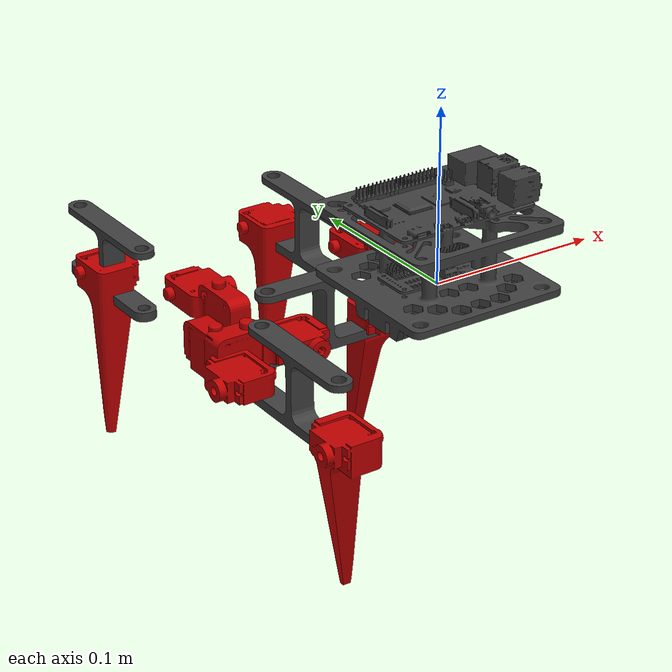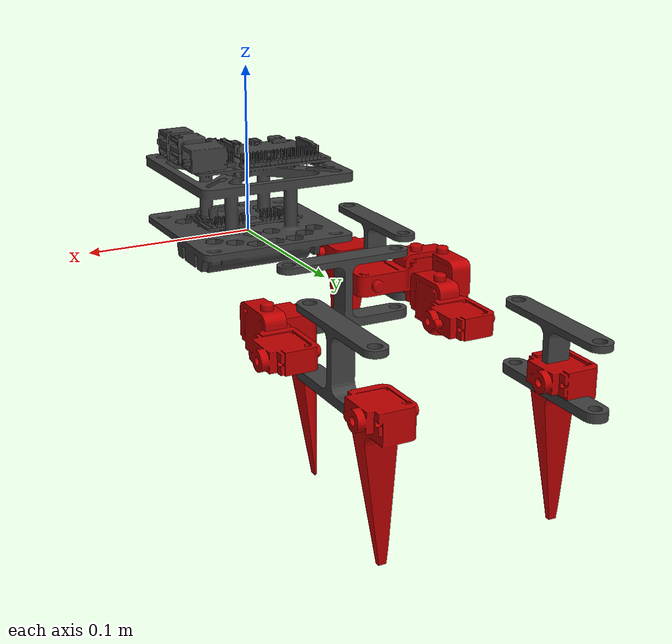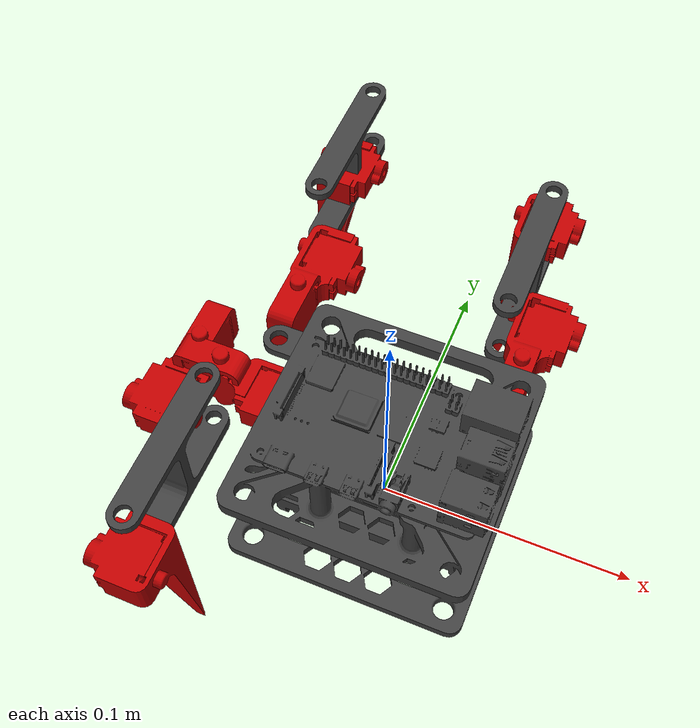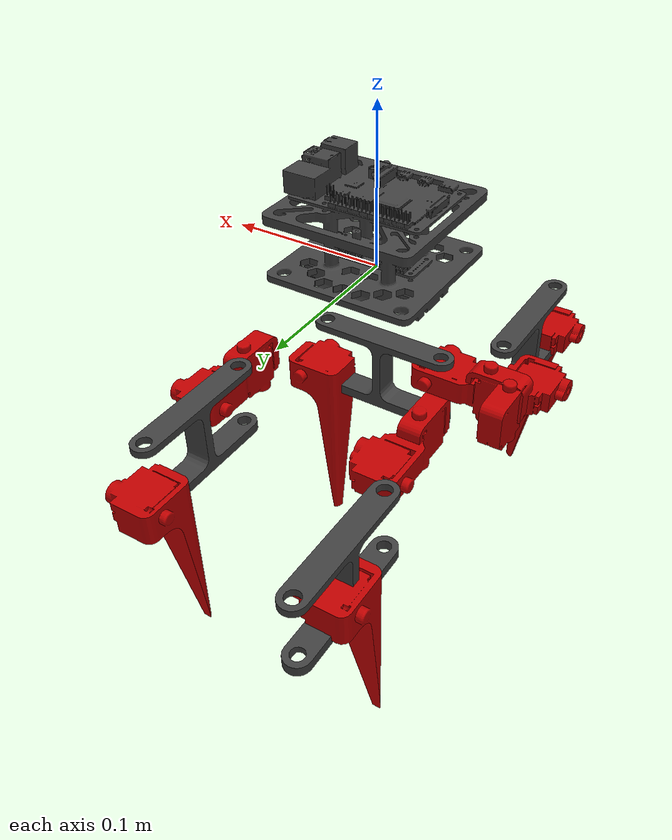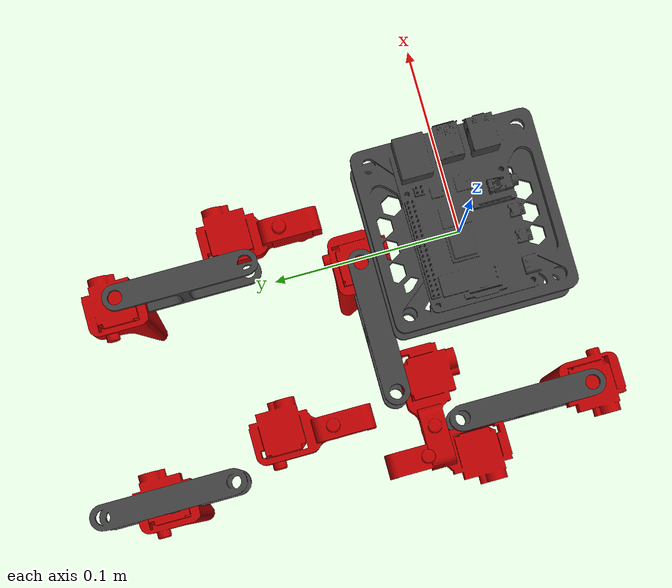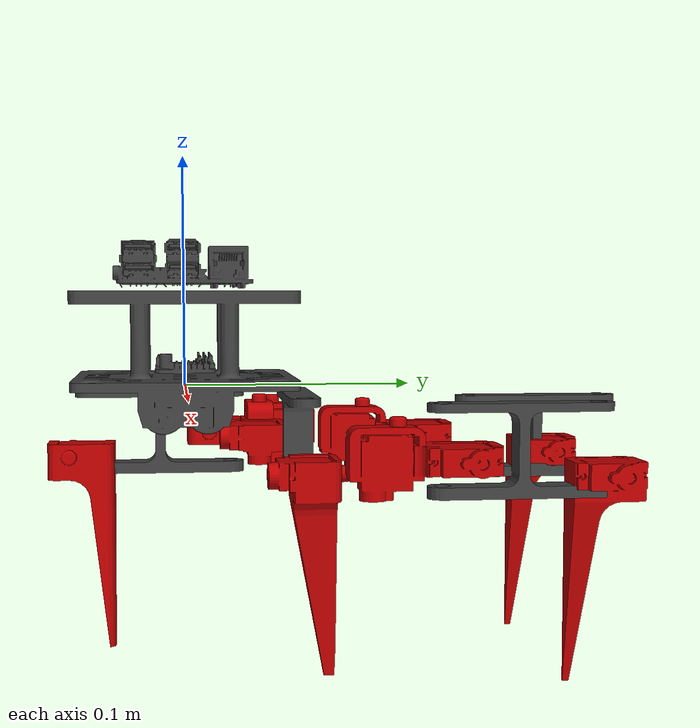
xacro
<?xml version="1.0" encoding="utf-8"?>
<robot xmlns:xacro="http://www.ros.org/wiki/xacro" name="spiderbytes_v9">
<xacro:arg name="ros2_control_yaml" default=""/>

<link name="base_center"/>

<joint name="base_center_to_base_link" type="fixed">
  <parent link="base_center"/>
  <child link="base_link"/>
  <!-- base_link is currently offset from the desired center,
       so we shift it back by (-x_center, -y_center, -z_center) -->
  <origin xyz="-0.03919674 0.0686135 -0.031017" rpy="0 0 0"/>
</joint>

  <link
    name="base_link">
 <collision>
    <origin xyz="0 0 0" rpy="1.5708 0 0" />
    <geometry>
      <box size="0.095 0.067221 0.095"/>
    </geometry>
  </collision>
  <inertial>
    <origin xyz="0 0 0" rpy="1.5708 0 0" />
    <mass value="5.0"/>
    <inertia
      ixx="0.0221"
      iyy="0.0193"
      izz="0.0221"
      ixy="0"
      ixz="0"
      iyz="0"/>
  </inertial>
    <visual>
      <origin
        xyz="0 0 0"
        rpy="0 0 0" />
      <geometry>
        <mesh
          filename="../meshes/v4_base_link.STL" />
      </geometry>
      <material
        name="">
        <color
          rgba="0.250980392156863 0.250980392156863 0.250980392156863 1" />
      </material>
    </visual>
  </link>
  <link
    name="hip_fr">
  <collision>
    <geometry>
      <cylinder radius="0.018" length="0.066"/>
    </geometry>
  </collision>
  <inertial>
    <origin xyz="0 0 0"/>
    <mass value="0.2"/>
    <inertia
      ixx="0.000073"
      iyy="0.000072"
      izz="0.000072"
      ixy="0"
      ixz="0"
      iyz="0"/>
  </inertial>
    <visual>
      <origin
        xyz="0 0 0"
        rpy="0 0 0" />
      <geometry>
        <mesh
          filename="../meshes/v4_link_rotation_1.STL" />
      </geometry>
      <material
        name="">
        <color
          rgba="0.75294 0 0 1" />
      </material>
    </visual>

  </link>
 <joint name="hip_joint_fr" type="revolute">
    <parent link="base_link"/>
    <child link="hip_fr"/>
    <origin
        xyz="-0.022064 -0.014984 0.0014444"
        rpy="0 0 0" />
    <axis xyz="0 0 1"/>
    <limit lower="-1.5708" upper="1.5708" effort="100" velocity="100"/>
  </joint>
  <link
    name="thigh_fr">
  <collision>
   <origin xyz="0.025 0 0" rpy="0 1.5708 0"/>
    <geometry>
      <cylinder radius="0.018" length="0.066"/>
    </geometry>
  </collision>
  <inertial>
    <origin xyz="0 0 0"/>
    <mass value="0.2"/>
    <inertia
      ixx="0.000073"
      iyy="0.000072"
      izz="0.000072"
      ixy="0"
      ixz="0"
      iyz="0"/>
  </inertial>
    <visual>
      <origin
        xyz="0 0 0"
        rpy="0 0 0" />
      <geometry>
        <mesh
          filename="../meshes/v4_link_limb_1.STL" />
      </geometry>
      <material
        name="">
        <color
          rgba="0.25098 0.25098 0.25098 1" />
      </material>
    </visual>

  </link>
   <joint name="knee_joint_fr" type="revolute">
    <parent link="hip_fr"/>
    <child link="thigh_fr"/>
    <origin xyz="0.025 0 0"/>
    <axis xyz="0 1 0"/>
    <limit lower="-1.5708" upper="1.5708" effort="100" velocity="100"/>
  </joint>
  <link
    name="leg_fr">
   <collision>
 <origin xyz="0.045 0 -0.035"/>
    <geometry>
      <cylinder radius="0.018" length="0.102"/>
    </geometry>
  </collision>
  <inertial>
    <origin xyz="0 0 0" rpy="0 1.5708 0"/>
    <mass value="0.25"/>
    <inertia
      ixx="0.000045"
      iyy="0.00214525"
      izz="0.00214525"
      ixy="0"
      ixz="0"
      iyz="0"/>
  </inertial>
    <visual>
      <origin
        xyz="0 0 0"
        rpy="0 0 0" />
      <geometry>
        <mesh
          filename="../meshes/v4_link_leg_1.STL" />
      </geometry>
      <material
        name="">
        <color
          rgba="0.752941176470588 0 0 1" />
      </material>
    </visual>

  </link>
    <joint name="leg_joint_fr" type="revolute">
    <parent link="thigh_fr"/>
    <child link="leg_fr"/>
    <origin xyz="0.045 0 -0.01"/>
    <axis xyz="0 1 0"/>
    <limit lower="-1.5708" upper="1.5708" effort="100" velocity="100"/>
  </joint>
  <link
    name="hip_fl">
     <collision>
    <geometry>
      <cylinder radius="0.018" length="0.066"/>
    </geometry>
  </collision>
  <inertial>
    <origin xyz="0 0 0"/>
    <mass value="0.2"/>
    <inertia
      ixx="0.000073"
      iyy="0.000072"
      izz="0.000072"
      ixy="0"
      ixz="0"
      iyz="0"/>
  </inertial>
    <visual>
      <origin
        xyz="0 0 0"
        rpy="0 0 0" />
      <geometry>
        <mesh
          filename="../meshes/v4_link_rotation_2.STL" />
      </geometry>
      <material
        name="">
        <color
          rgba="0.752941176470588 0 0 1" />
      </material>
    </visual>

  </link>
   <joint name="hip_joint_fl" type="revolute">
    <parent link="base_link"/>
    <child link="hip_fl"/>
    <origin xyz="0.055 0.055 0" rpy="0 0 1.5708"/>
    <axis xyz="0 0 1"/>
    <limit lower="-1.57" upper="1.57" effort="100" velocity="100"/>
  </joint>
  <link
    name="thigh_fl">
   <collision>
      <origin xyz="0.025 0 0" rpy="0 1.5708 0"/>
    <geometry>
      <cylinder radius="0.018" length="0.066"/>
    </geometry>
  </collision>
  <inertial>
    <origin xyz="0 0 0" rpy="0 1.5708 0"/>
    <mass value="0.2"/>
    <inertia
      ixx="0.000073"
      iyy="0.000072"
      izz="0.000072"
      ixy="0"
      ixz="0"
      iyz="0"/>
  </inertial>
    <visual>
      <origin
        xyz="0 0 0"
        rpy="0 0 0" />
      <geometry>
        <mesh
          filename="../meshes/v4_link_limb_2.STL" />
      </geometry>
      <material
        name="">
        <color
          rgba="0.250980392156863 0.250980392156863 0.250980392156863 1" />
      </material>
    </visual>

  </link>
    <joint name="knee_joint_fl" type="revolute">
    <parent link="hip_fl"/>
    <child link="thigh_fl"/>
    <origin xyz="0.025 0 0"/>
    <axis xyz="0 1 0"/>
    <limit lower="-1.5708" upper="1.5708" effort="100" velocity="100"/>
  </joint>
  <link
    name="leg_fl">
   <collision>
  <origin xyz="0.045 0 -0.035"/>
    <geometry>
      <cylinder radius="0.018" length="0.102"/>
    </geometry>
  </collision>
  <inertial>
    <origin xyz="0 0 0" rpy="0 1.5708 0"/>
    <mass value="0.25"/>
    <inertia
      ixx="0.000045"
      iyy="0.00214525"
      izz="0.00214525"
      ixy="0"
      ixz="0"
      iyz="0"/>
  </inertial>
    <visual>
      <origin
        xyz="0 0 0"
        rpy="0 0 0" />
      <geometry>
        <mesh
          filename="../meshes/v4_link_leg_2.STL" />
      </geometry>
      <material
        name="">
        <color
          rgba="0.752941176470588 0 0 1" />
      </material>
    </visual>

  </link>
 <joint name="leg_joint_fl" type="revolute">
    <parent link="thigh_fl"/>
    <child link="leg_fl"/>
    <origin xyz="0.045 0 -0.01"/>
    <axis xyz="0 1 0"/>
    <limit lower="-1.5708" upper="1.5708" effort="100" velocity="100"/>
  </joint>
  <link
    name="hip_rl">
    <collision>
    <geometry>
      <cylinder radius="0.018" length="0.066"/>
    </geometry>
  </collision>
  <inertial>
    <origin xyz="0 0 0"/>
    <mass value="0.2"/>
    <inertia
      ixx="0.000073"
      iyy="0.000072"
      izz="0.000072"
      ixy="0"
      ixz="0"
      iyz="0"/>
  </inertial>
    <visual>
      <origin
        xyz="0 0 0"
        rpy="0 0 0" />
      <geometry>
        <mesh
          filename="../meshes/v4_link_rotation_3.STL" />
      </geometry>
      <material
        name="">
        <color
          rgba="0.752941176470588 0 0 1" />
      </material>
    </visual>

  </link>
   <joint name="hip_joint_rl" type="revolute">
    <parent link="base_link"/>
    <child link="hip_rl"/>
    <origin xyz="-0.055 0.055 0" rpy="0 0 1.5708"/>
    <axis xyz="0 0 1"/>
    <limit lower="-1.5708" upper="1.5708" effort="100" velocity="100"/>
  </joint>
  <link
    name="thigh_rl">
   <collision>
   <origin xyz="0.025 0 0" rpy="0 1.5708 0"/>
    <geometry>
      <cylinder radius="0.018" length="0.066"/>
    </geometry>
  </collision>
  <inertial>
    <origin xyz="0 0 0" rpy="0 1.5708 0"/>
    <mass value="0.2"/>
    <inertia
      ixx="0.000073"
      iyy="0.000072"
      izz="0.000072"
      ixy="0"
      ixz="0"
      iyz="0"/>
  </inertial>
    <visual>
      <origin
        xyz="0 0 0"
        rpy="0 0 0" />
      <geometry>
        <mesh
          filename="../meshes/v4_link_limb_3.STL" />
      </geometry>
      <material
        name="">
        <color
          rgba="0.250980392156863 0.250980392156863 0.250980392156863 1" />
      </material>
    </visual>

  </link>
 <joint name="knee_joint_rl" type="revolute">
    <parent link="hip_rl"/>
    <child link="thigh_rl"/>
    <origin xyz="0.025 0 0"/>
    <axis xyz="0 1 0"/>
    <limit lower="-1.5708" upper="1.5708" effort="100" velocity="100"/>
  </joint>
  <link
    name="leg_rl">
    <collision>
   <origin xyz="0.045 0 -0.035"/>
    <geometry>
      <cylinder radius="0.018" length="0.102"/>
    </geometry>
  </collision>
  <inertial>
    <origin xyz="0 0 0" rpy="0 1.5708 0"/>
    <mass value="0.25"/>
    <inertia
      ixx="0.000045"
      iyy="0.00214525"
      izz="0.00214525"
      ixy="0"
      ixz="0"
      iyz="0"/>
  </inertial>
    <visual>
      <origin
        xyz="0 0 0"
        rpy="0 0 0" />
      <geometry>
        <mesh
          filename="../meshes/v4_link_leg_3.STL" />
      </geometry>
      <material
        name="">
        <color
          rgba="0.752941176470588 0 0 1" />
      </material>
    </visual>

  </link>
 <joint name="leg_joint_rl" type="revolute">
    <parent link="thigh_rl"/>
    <child link="leg_rl"/>
       <origin xyz="0.045 0 -0.01"/>

    <axis xyz="0 1 0"/>
    <limit lower="-1.5708" upper="1.5708" effort="100" velocity="100"/>
  </joint>
  <link
    name="hip_rr">
    <collision>
    <geometry>
      <cylinder radius="0.018" length="0.066"/>
    </geometry>
  </collision>
  <inertial>
    <origin xyz="0 0 0"/>
    <mass value="0.2"/>
    <inertia
      ixx="0.000073"
      iyy="0.000072"
      izz="0.000072"
      ixy="0"
      ixz="0"
      iyz="0"/>
  </inertial>
    <visual>
      <origin
        xyz="0 0 0"
        rpy="0 0 0" />
      <geometry>
        <mesh
          filename="../meshes/v4_link_rotation_4.STL" />
      </geometry>
      <material
        name="">
        <color
          rgba="0.752941176470588 0 0 1" />
      </material>
    </visual>

  </link>
  <joint name="hip_joint_rr" type="revolute">
    <parent link="base_link"/>
    <child link="hip_rr"/>
    <origin xyz="-0.055 -0.055 0" rpy="0 0 -1.5708"/>
    <axis xyz="0 0 1"/>
    <limit lower="-1.5708" upper="1.5708" effort="100" velocity="100"/>
  </joint>
  <link
    name="thigh_rr">
   <collision>
   <origin xyz="0.025 0 0" rpy="0 1.5708 0"/>
    <geometry>
      <cylinder radius="0.018" length="0.066"/>
    </geometry>
  </collision>
  <inertial>
    <origin xyz="0 0 0" rpy="0 1.5708 0"/>
    <mass value="0.2"/>
    <inertia
      ixx="0.000073"
      iyy="0.000072"
      izz="0.000072"
      ixy="0"
      ixz="0"
      iyz="0"/>
  </inertial>
    <visual>
      <origin
        xyz="0 0 0"
        rpy="0 0 0" />
      <geometry>
        <mesh
          filename="../meshes/v4_link_limb_4.STL" />
      </geometry>
      <material
        name="">
        <color
          rgba="0.250980392156863 0.250980392156863 0.250980392156863 1" />
      </material>
    </visual>

  </link>

  <joint name="knee_joint_rr" type="revolute">
    <parent link="hip_rr"/>
    <child link="thigh_rr"/>
    <origin xyz="0.025 0 0"/>
    <axis xyz="0 1 0"/>
    <limit lower="-1.5708" upper="1.5708" effort="100" velocity="100"/>
  </joint>
  <link
    name="leg_rr">
     <collision>
    <origin xyz="0.045 0 -0.035"/>

    <geometry>
      <cylinder radius="0.018" length="0.102"/>
    </geometry>
  </collision>
  <inertial>
    <origin xyz="0 0 0" rpy="0 1.5708 0"/>
    <mass value="0.25"/>
    <inertia
      ixx="0.000045"
      iyy="0.00214525"
      izz="0.00214525"
      ixy="0"
      ixz="0"
      iyz="0"/>
  </inertial>
    <visual>
      <origin
        xyz="0 0 0"
        rpy="0 0 0" />
      <geometry>
        <mesh
          filename="../meshes/v4_link_leg_4.STL" />
      </geometry>
      <material
        name="">
        <color
          rgba="0.752941176470588 0 0 1" />
      </material>
    </visual>

  </link>
  <joint name="leg_joint_rr" type="revolute">
    <parent link="thigh_rr"/>
    <child link="leg_rr"/>
        <origin xyz="0.045 0 -0.01"/>

    <axis xyz="0 1 0"/>
    <limit lower="-1.5708" upper="1.5708" effort="100" velocity="100"/>
  </joint>

  <gazebo reference="leg_fl"><mu1>1.2</mu1><mu2>1.2</mu2></gazebo>
  <gazebo reference="leg_fr"><mu1>1.2</mu1><mu2>1.2</mu2></gazebo>
  <gazebo reference="leg_rr"><mu1>1.2</mu1><mu2>1.2</mu2></gazebo>
  <gazebo reference="leg_rr"><mu1>1.2</mu1><mu2>1.2</mu2></gazebo>

  <ros2_control name="spiderbytes_system" type="system">
    <hardware>
      <plugin>gz_ros2_control/GazeboSimSystem</plugin>
    </hardware>

    <joint name="hip_joint_fl"><command_interface name="position"/><state_interface name="position"/><state_interface name="velocity"/></joint>
    <joint name="hip_joint_fr"><command_interface name="position"/><state_interface name="position"/><state_interface name="velocity"/></joint>
    <joint name="hip_joint_rr"><command_interface name="position"/><state_interface name="position"/><state_interface name="velocity"/></joint>
    <joint name="hip_joint_rl"><command_interface name="position"/><state_interface name="position"/><state_interface name="velocity"/></joint>

    <joint name="knee_joint_fl"><command_interface name="position"/><state_interface name="position"/><state_interface name="velocity"/></joint>
    <joint name="knee_joint_fr"><command_interface name="position"/><state_interface name="position"/><state_interface name="velocity"/></joint>
    <joint name="knee_joint_rr"><command_interface name="position"/><state_interface name="position"/><state_interface name="velocity"/></joint>
    <joint name="knee_joint_rl"><command_interface name="position"/><state_interface name="position"/><state_interface name="velocity"/></joint>

    <joint name="leg_joint_rr"><command_interface name="position"/><state_interface name="position"/><state_interface name="velocity"/></joint>
    <joint name="leg_joint_rl"><command_interface name="position"/><state_interface name="position"/><state_interface name="velocity"/></joint>
    <joint name="leg_joint_fr"><command_interface name="position"/><state_interface name="position"/><state_interface name="velocity"/></joint>
    <joint name="leg_joint_fl"><command_interface name="position"/><state_interface name="position"/><state_interface name="velocity"/></joint>
  </ros2_control>
  <gazebo>
    <plugin filename="gz_ros2_control-system" name="gz_ros2_control::GazeboSimROS2ControlPlugin">
      <parameters>$(arg ros2_control_yaml)</parameters>
    </plugin>
  </gazebo>
</robot>
